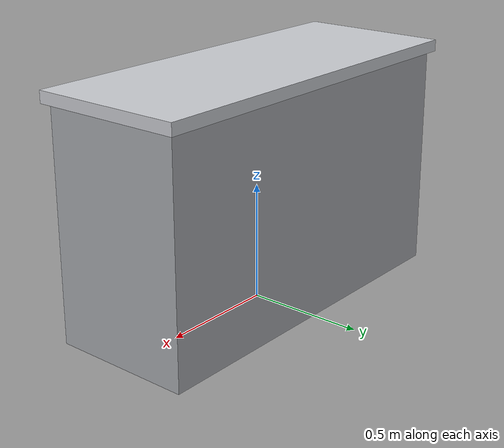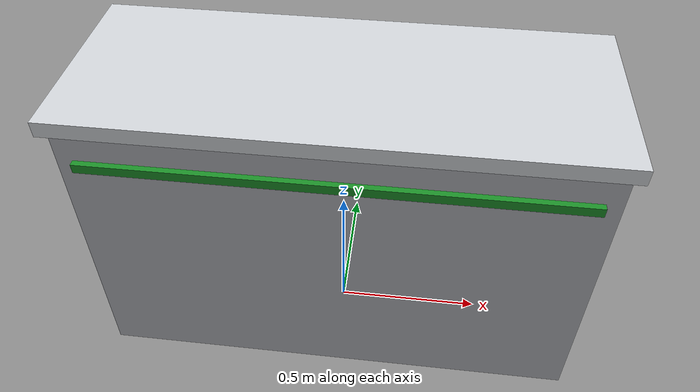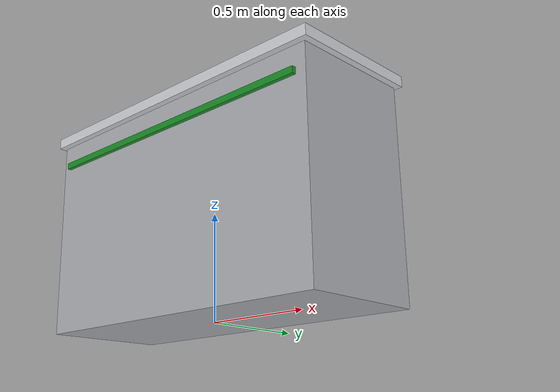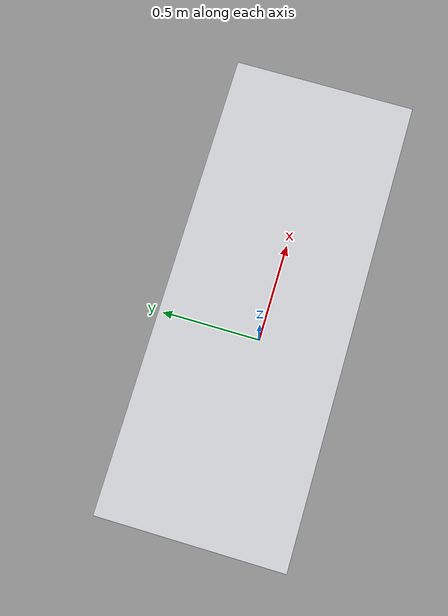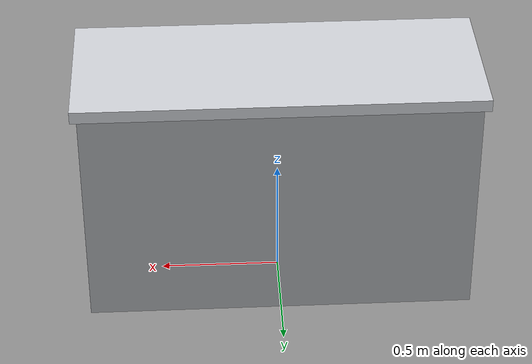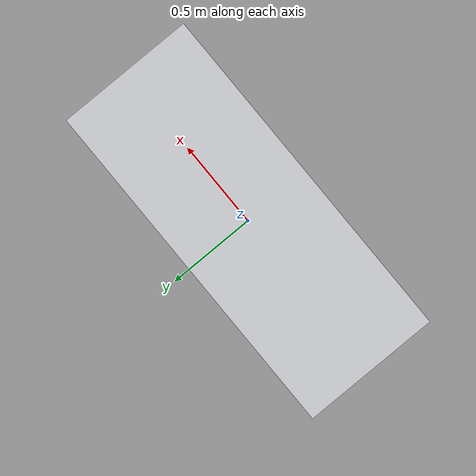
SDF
<?xml version="1.0" ?>
<sdf version="1.6">
  <model name="receiving_counter">
    <static>true</static>

    <link name="counter_link">
      <!-- R3 barrier collision (solid, robot-blocking) -->
      <collision name="barrier_col">
        <pose>0 0 0.50 0 0 0</pose>
        <geometry><box><size>1.6 0.6 1.0</size></box></geometry>
        <surface><friction><ode><mu>0.8</mu><mu2>0.8</mu2></ode></friction></surface>
      </collision>

      <!-- Body -->
      <visual name="body_vis">
        <pose>0 0 0.48 0 0 0</pose>
        <geometry><box><size>1.6 0.6 0.96</size></box></geometry>
        <material><ambient>0.55 0.56 0.58 1</ambient><diffuse>0.66 0.67 0.69 1</diffuse><specular>0.45 0.45 0.47 1</specular></material>
      </visual>
      <!-- Stainless handoff top -->
      <visual name="top_vis">
        <pose>0 0 0.99 0 0 0</pose>
        <geometry><box><size>1.65 0.65 0.05</size></box></geometry>
        <material><ambient>0.68 0.69 0.71 1</ambient><diffuse>0.80 0.81 0.83 1</diffuse><specular>0.70 0.70 0.72 1</specular></material>
      </visual>
      <!-- Robot-side status LED strip (emissive) -->
      <visual name="led_vis">
        <pose>0 -0.31 0.85 0 0 0</pose>
        <geometry><box><size>1.5 0.02 0.03</size></box></geometry>
        <material>
          <ambient>0.05 0.35 0.10 1</ambient><diffuse>0.10 0.55 0.15 1</diffuse>
          <emissive>0.10 0.50 0.15 1</emissive>
        </material>
      </visual>
    </link>

    <!-- FUTURE Nav2 pickup goal: robot approaches from -Y (pathway side) -->
    <frame name="pickup_frame">
      <pose>0 -0.9 0 0 0 1.5708</pose>
    </frame>
  </model>
</sdf>
